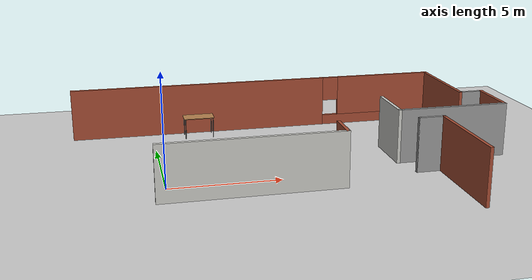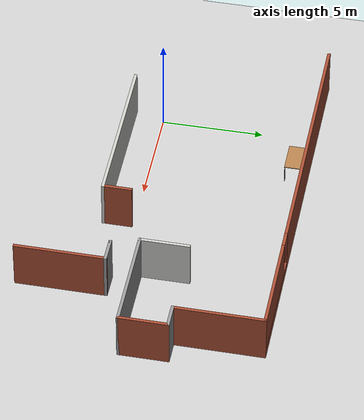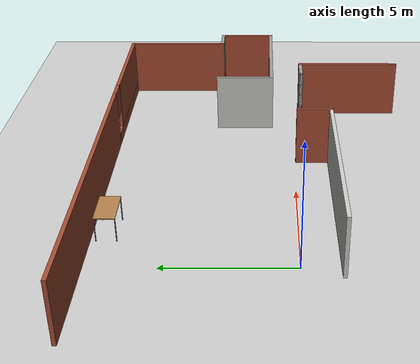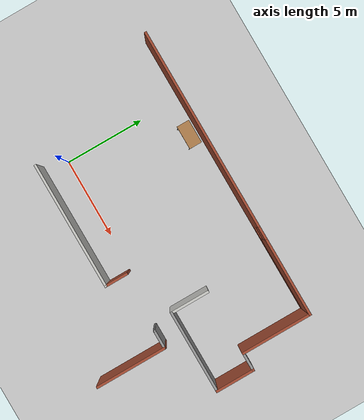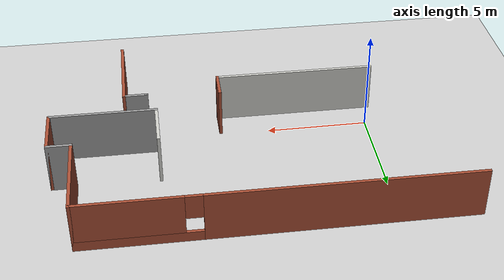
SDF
<sdf version="1.6">
 <world name="default">
  <model name="ground_plane">
   <static>1</static>
   <link name="link">
    <collision name="collision">
     <geometry><plane><normal>0 0 1</normal><size>100 100</size></plane></geometry>
     <surface>
      <contact><collide_bitmask>65535</collide_bitmask></contact>
      <friction><ode><mu>100</mu><mu2>50</mu2></ode></friction>
     </surface>
    </collision>
    <visual name="visual">
     <cast_shadows>0</cast_shadows>
     <geometry><plane><normal>0 0 1</normal><size>100 100</size></plane></geometry>
     <material>
      <script><uri>file://media/materials/scripts/gazebo.material</uri><name>Gazebo/Grey</name></script>
     </material>
    </visual>
   </link>
  </model>
  <model name="table">
   <static>1</static>
   <link name="link">
    <collision name="surface">
     <pose>0 0 1 0 -0 0</pose>
     <geometry><box><size>1.5 0.8 0.03</size></box></geometry>
     <surface><friction><ode><mu>0.6</mu><mu2>0.6</mu2></ode></friction></surface>
    </collision>
    <visual name="visual1">
     <pose>0 0 1 0 -0 0</pose>
     <geometry><box><size>1.5 0.8 0.03</size></box></geometry>
     <material>
      <script><uri>file://media/materials/scripts/gazebo.material</uri><name>Gazebo/Wood</name></script>
     </material>
    </visual>
    <collision name="front_left_leg">
     <pose>0.68 0.38 0.5 0 -0 0</pose>
     <geometry><cylinder><radius>0.02</radius><length>1</length></cylinder></geometry>
    </collision>
    <visual name="front_left_leg">
     <pose>0.68 0.38 0.5 0 -0 0</pose>
     <geometry><cylinder><radius>0.02</radius><length>1</length></cylinder></geometry>
     <material>
      <script><uri>file://media/materials/scripts/gazebo.material</uri><name>Gazebo/Grey</name></script>
     </material>
    </visual>
    <collision name="front_right_leg">
     <pose>0.68 -0.38 0.5 0 -0 0</pose>
     <geometry><cylinder><radius>0.02</radius><length>1</length></cylinder></geometry>
    </collision>
    <visual name="front_right_leg">
     <pose>0.68 -0.38 0.5 0 -0 0</pose>
     <geometry><cylinder><radius>0.02</radius><length>1</length></cylinder></geometry>
     <material>
      <script><uri>file://media/materials/scripts/gazebo.material</uri><name>Gazebo/Grey</name></script>
     </material>
    </visual>
    <collision name="back_right_leg">
     <pose>-0.68 -0.38 0.5 0 -0 0</pose>
     <geometry><cylinder><radius>0.02</radius><length>1</length></cylinder></geometry>
    </collision>
    <visual name="back_right_leg">
     <pose>-0.68 -0.38 0.5 0 -0 0</pose>
     <geometry><cylinder><radius>0.02</radius><length>1</length></cylinder></geometry>
     <material>
      <script><uri>file://media/materials/scripts/gazebo.material</uri><name>Gazebo/Grey</name></script>
     </material>
    </visual>
    <collision name="back_left_leg">
     <pose>-0.68 0.38 0.5 0 -0 0</pose>
     <geometry><cylinder><radius>0.02</radius><length>1</length></cylinder></geometry>
    </collision>
    <visual name="back_left_leg">
     <pose>-0.68 0.38 0.5 0 -0 0</pose>
     <geometry><cylinder><radius>0.02</radius><length>1</length></cylinder></geometry>
     <material>
      <script><uri>file://media/materials/scripts/gazebo.material</uri><name>Gazebo/Grey</name></script>
     </material>
    </visual>
   </link>
   <pose>2.2685 6.9934 0 0 -0 0</pose>
  </model>
  <model name="homeOffice">
   <link name="Wall_20">
    <pose>5.69721 -2.2696 0 0 0 -1.5708</pose>
    <visual name="Wall_20_Visual">
     <pose>0 0 1.25 0 -0 0</pose>
     <geometry><box><size>1.5 0.15 2.5</size></box></geometry>
     <material>
      <script><uri>file://media/materials/scripts/gazebo.material</uri><name>Gazebo/Bricks</name></script>
      <ambient>1 1 1 1</ambient>
      <shader type="pixel"/>
      <diffuse>1 1 1 1</diffuse>
      <specular>0.2 0.2 0.2 1</specular>
      <emissive>0 0 0 1</emissive>
     </material>
     <meta><layer>0</layer></meta>
    </visual>
    <collision name="Wall_20_Collision">
     <pose>0 0 1.25 0 -0 0</pose>
     <geometry><box><size>1.5 0.15 2.5</size></box></geometry>
     <surface>
      <friction>
       <ode><mu>1</mu><mu2>1</mu2><fdir1>0 0 0</fdir1><slip1>0</slip1><slip2>0</slip2></ode>
       <torsional>
        <coefficient>1</coefficient>
        <patch_radius>0</patch_radius>
        <surface_radius>0</surface_radius>
        <use_patch_radius>1</use_patch_radius>
        <ode><slip>0</slip></ode>
       </torsional>
      </friction>
      <bounce><restitution_coefficient>0</restitution_coefficient><threshold>1e+06</threshold></bounce>
      <contact>
       <collide_without_contact>0</collide_without_contact>
       <collide_without_contact_bitmask>1</collide_without_contact_bitmask>
       <collide_bitmask>1</collide_bitmask>
       <ode>
        <soft_cfm>0</soft_cfm>
        <soft_erp>0.2</soft_erp>
        <kp>1e+13</kp>
        <kd>1</kd>
        <max_vel>0.01</max_vel>
        <min_depth>0</min_depth>
       </ode>
       <bullet>
        <split_impulse>1</split_impulse>
        <split_impulse_penetration_threshold>-0.01</split_impulse_penetration_threshold>
        <soft_cfm>0</soft_cfm>
        <soft_erp>0.2</soft_erp>
        <kp>1e+13</kp>
        <kd>1</kd>
       </bullet>
      </contact>
     </surface>
    </collision>
   </link>
   <link name="Wall_21">
    <pose>1.77221 -2.9446 0 0 -0 3.14159</pose>
    <visual name="Wall_21_Visual">
     <pose>0 0 1.25 0 -0 0</pose>
     <geometry><box><size>8 0.15 2.5</size></box></geometry>
     <material>
      <script><uri>file://media/materials/scripts/gazebo.material</uri><name>Gazebo/CeilingTiled</name></script>
      <ambient>0.435294 0.796078 0.67451 1</ambient>
      <shader type="pixel"/>
      <diffuse>1 1 1 1</diffuse>
      <specular>0 0 0 1</specular>
      <emissive>0 0 0 1</emissive>
     </material>
     <meta><layer>0</layer></meta>
    </visual>
    <collision name="Wall_21_Collision">
     <pose>0 0 1.25 0 -0 0</pose>
     <geometry><box><size>8 0.15 2.5</size></box></geometry>
     <surface>
      <friction>
       <ode><mu>1</mu><mu2>1</mu2><fdir1>0 0 0</fdir1><slip1>0</slip1><slip2>0</slip2></ode>
       <torsional>
        <coefficient>1</coefficient>
        <patch_radius>0</patch_radius>
        <surface_radius>0</surface_radius>
        <use_patch_radius>1</use_patch_radius>
        <ode><slip>0</slip></ode>
       </torsional>
      </friction>
      <bounce><restitution_coefficient>0</restitution_coefficient><threshold>1e+06</threshold></bounce>
      <contact>
       <collide_without_contact>0</collide_without_contact>
       <collide_without_contact_bitmask>1</collide_without_contact_bitmask>
       <collide_bitmask>1</collide_bitmask>
       <ode>
        <soft_cfm>0</soft_cfm>
        <soft_erp>0.2</soft_erp>
        <kp>1e+13</kp>
        <kd>1</kd>
        <max_vel>0.01</max_vel>
        <min_depth>0</min_depth>
       </ode>
       <bullet>
        <split_impulse>1</split_impulse>
        <split_impulse_penetration_threshold>-0.01</split_impulse_penetration_threshold>
        <soft_cfm>0</soft_cfm>
        <soft_erp>0.2</soft_erp>
        <kp>1e+13</kp>
        <kd>1</kd>
       </bullet>
      </contact>
     </surface>
    </collision>
   </link>
   <link name="Wall_47">
    <pose>10.3872 -4.0196 0 0 -0 1.5708</pose>
    <visual name="Wall_47_Visual">
     <pose>0 0 1.25 0 -0 0</pose>
     <geometry><box><size>4.5 0.15 2.5</size></box></geometry>
     <material>
      <script><uri>file://media/materials/scripts/gazebo.material</uri><name>Gazebo/Bricks</name></script>
      <ambient>1 1 1 1</ambient>
      <shader type="pixel"/>
      <diffuse>1 1 1 1</diffuse>
      <specular>0.2 0.2 0.2 1</specular>
      <emissive>0 0 0 1</emissive>
     </material>
     <meta><layer>0</layer></meta>
    </visual>
    <collision name="Wall_47_Collision">
     <pose>0 0 1.25 0 -0 0</pose>
     <geometry><box><size>4.5 0.15 2.5</size></box></geometry>
     <surface>
      <friction>
       <ode><mu>1</mu><mu2>1</mu2><fdir1>0 0 0</fdir1><slip1>0</slip1><slip2>0</slip2></ode>
       <torsional>
        <coefficient>1</coefficient>
        <patch_radius>0</patch_radius>
        <surface_radius>0</surface_radius>
        <use_patch_radius>1</use_patch_radius>
        <ode><slip>0</slip></ode>
       </torsional>
      </friction>
      <bounce><restitution_coefficient>0</restitution_coefficient><threshold>1e+06</threshold></bounce>
      <contact>
       <collide_without_contact>0</collide_without_contact>
       <collide_without_contact_bitmask>1</collide_without_contact_bitmask>
       <collide_bitmask>1</collide_bitmask>
       <ode>
        <soft_cfm>0</soft_cfm>
        <soft_erp>0.2</soft_erp>
        <kp>1e+13</kp>
        <kd>1</kd>
        <max_vel>0.01</max_vel>
        <min_depth>0</min_depth>
       </ode>
       <bullet>
        <split_impulse>1</split_impulse>
        <split_impulse_penetration_threshold>-0.01</split_impulse_penetration_threshold>
        <soft_cfm>0</soft_cfm>
        <soft_erp>0.2</soft_erp>
        <kp>1e+13</kp>
        <kd>1</kd>
       </bullet>
      </contact>
     </surface>
    </collision>
   </link>
   <link name="Wall_48">
    <pose>9.83721 -1.8446 0 0 -0 3.14159</pose>
    <visual name="Wall_48_Visual">
     <pose>0 0 1.25 0 -0 0</pose>
     <geometry><box><size>1.25 0.15 2.5</size></box></geometry>
     <material>
      <script><uri>file://media/materials/scripts/gazebo.material</uri><name>Gazebo/Grey</name></script>
      <ambient>1 1 1 1</ambient>
      <shader type="pixel"/>
      <diffuse>0.7 0.7 0.7 1</diffuse>
      <specular>0.01 0.01 0.01 1</specular>
      <emissive>0 0 0 1</emissive>
     </material>
     <meta><layer>0</layer></meta>
    </visual>
    <collision name="Wall_48_Collision">
     <pose>0 0 1.25 0 -0 0</pose>
     <geometry><box><size>1.25 0.15 2.5</size></box></geometry>
     <surface>
      <friction>
       <ode><mu>1</mu><mu2>1</mu2><fdir1>0 0 0</fdir1><slip1>0</slip1><slip2>0</slip2></ode>
       <torsional>
        <coefficient>1</coefficient>
        <patch_radius>0</patch_radius>
        <surface_radius>0</surface_radius>
        <use_patch_radius>1</use_patch_radius>
        <ode><slip>0</slip></ode>
       </torsional>
      </friction>
      <bounce><restitution_coefficient>0</restitution_coefficient><threshold>1e+06</threshold></bounce>
      <contact>
       <collide_without_contact>0</collide_without_contact>
       <collide_without_contact_bitmask>1</collide_without_contact_bitmask>
       <collide_bitmask>1</collide_bitmask>
       <ode>
        <soft_cfm>0</soft_cfm>
        <soft_erp>0.2</soft_erp>
        <kp>1e+13</kp>
        <kd>1</kd>
        <max_vel>0.01</max_vel>
        <min_depth>0</min_depth>
       </ode>
       <bullet>
        <split_impulse>1</split_impulse>
        <split_impulse_penetration_threshold>-0.01</split_impulse_penetration_threshold>
        <soft_cfm>0</soft_cfm>
        <soft_erp>0.2</soft_erp>
        <kp>1e+13</kp>
        <kd>1</kd>
       </bullet>
      </contact>
     </surface>
    </collision>
   </link>
   <link name="Wall_49">
    <pose>9.28721 -1.8446 0 0 -0 0</pose>
    <visual name="Wall_49_Visual">
     <pose>0 0 1.25 0 -0 0</pose>
     <geometry><box><size>0.15 0.15 2.5</size></box></geometry>
     <material>
      <script><uri>file://media/materials/scripts/gazebo.material</uri><name>Gazebo/Grey</name></script>
      <ambient>1 1 1 1</ambient>
      <shader type="pixel"/>
      <diffuse>0.7 0.7 0.7 1</diffuse>
      <specular>0.01 0.01 0.01 1</specular>
      <emissive>0 0 0 1</emissive>
     </material>
     <meta><layer>0</layer></meta>
    </visual>
    <collision name="Wall_49_Collision">
     <pose>0 0 1.25 0 -0 0</pose>
     <geometry><box><size>0.15 0.15 2.5</size></box></geometry>
     <surface>
      <friction>
       <ode><mu>1</mu><mu2>1</mu2><fdir1>0 0 0</fdir1><slip1>0</slip1><slip2>0</slip2></ode>
       <torsional>
        <coefficient>1</coefficient>
        <patch_radius>0</patch_radius>
        <surface_radius>0</surface_radius>
        <use_patch_radius>1</use_patch_radius>
        <ode><slip>0</slip></ode>
       </torsional>
      </friction>
      <bounce><restitution_coefficient>0</restitution_coefficient><threshold>1e+06</threshold></bounce>
      <contact>
       <collide_without_contact>0</collide_without_contact>
       <collide_without_contact_bitmask>1</collide_without_contact_bitmask>
       <collide_bitmask>1</collide_bitmask>
       <ode>
        <soft_cfm>0</soft_cfm>
        <soft_erp>0.2</soft_erp>
        <kp>1e+13</kp>
        <kd>1</kd>
        <max_vel>0.01</max_vel>
        <min_depth>0</min_depth>
       </ode>
       <bullet>
        <split_impulse>1</split_impulse>
        <split_impulse_penetration_threshold>-0.01</split_impulse_penetration_threshold>
        <soft_cfm>0</soft_cfm>
        <soft_erp>0.2</soft_erp>
        <kp>1e+13</kp>
        <kd>1</kd>
       </bullet>
      </contact>
     </surface>
    </collision>
   </link>
   <link name="Wall_65">
    <pose>3.69779 6.1946 0 0 -0 0</pose>
    <visual name="Wall_65_Visual_2">
     <pose>6.76475 0 1.5 0 -0 0</pose>
     <geometry><box><size>4.97051 0.15 2</size></box></geometry>
     <material>
      <script><uri>file://media/materials/scripts/gazebo.material</uri><name>Gazebo/Bricks</name></script>
      <ambient>1 1 1 1</ambient>
      <shader type="pixel"/>
      <diffuse>1 1 1 1</diffuse>
      <specular>0.2 0.2 0.2 1</specular>
      <emissive>0 0 0 1</emissive>
     </material>
     <meta><layer>0</layer></meta>
    </visual>
    <visual name="Wall_65_Visual_0">
     <pose>-2.88525 0 1.25 0 -0 0</pose>
     <geometry><box><size>12.7295 0.15 2.5</size></box></geometry>
     <material>
      <script><uri>file://media/materials/scripts/gazebo.material</uri><name>Gazebo/Bricks</name></script>
      <ambient>1 1 1 1</ambient>
      <shader type="pixel"/>
      <diffuse>1 1 1 1</diffuse>
      <specular>0.2 0.2 0.2 1</specular>
      <emissive>0 0 0 1</emissive>
     </material>
     <meta><layer>0</layer></meta>
    </visual>
    <visual name="Wall_65_Visual_1">
     <pose>6.36475 0 0.25 0 -0 0</pose>
     <geometry><box><size>5.77051 0.15 0.5</size></box></geometry>
     <material>
      <script><uri>file://media/materials/scripts/gazebo.material</uri><name>Gazebo/Bricks</name></script>
      <ambient>1 1 1 1</ambient>
      <shader type="pixel"/>
      <diffuse>1 1 1 1</diffuse>
      <specular>0.2 0.2 0.2 1</specular>
      <emissive>0 0 0 1</emissive>
     </material>
     <meta><layer>0</layer></meta>
    </visual>
    <visual name="Wall_65_Visual_3">
     <pose>3.87949 0 1.9 0 -0 0</pose>
     <geometry><box><size>0.8 0.15 1.2</size></box></geometry>
     <material>
      <script><uri>file://media/materials/scripts/gazebo.material</uri><name>Gazebo/Bricks</name></script>
      <ambient>1 1 1 1</ambient>
      <shader type="pixel"/>
      <diffuse>1 1 1 1</diffuse>
      <specular>0.2 0.2 0.2 1</specular>
      <emissive>0 0 0 1</emissive>
     </material>
     <meta><layer>0</layer></meta>
    </visual>
    <collision name="Wall_65_Collision_0">
     <pose>-2.88525 0 1.25 0 -0 0</pose>
     <geometry><box><size>12.7295 0.15 2.5</size></box></geometry>
     <surface>
      <friction>
       <ode><mu>1</mu><mu2>1</mu2><fdir1>0 0 0</fdir1><slip1>0</slip1><slip2>0</slip2></ode>
       <torsional>
        <coefficient>1</coefficient>
        <patch_radius>0</patch_radius>
        <surface_radius>0</surface_radius>
        <use_patch_radius>1</use_patch_radius>
        <ode><slip>0</slip></ode>
       </torsional>
      </friction>
      <bounce><restitution_coefficient>0</restitution_coefficient><threshold>1e+06</threshold></bounce>
      <contact>
       <collide_without_contact>0</collide_without_contact>
       <collide_without_contact_bitmask>1</collide_without_contact_bitmask>
       <collide_bitmask>1</collide_bitmask>
       <ode>
        <soft_cfm>0</soft_cfm>
        <soft_erp>0.2</soft_erp>
        <kp>1e+13</kp>
        <kd>1</kd>
        <max_vel>0.01</max_vel>
        <min_depth>0</min_depth>
       </ode>
       <bullet>
        <split_impulse>1</split_impulse>
        <split_impulse_penetration_threshold>-0.01</split_impulse_penetration_threshold>
        <soft_cfm>0</soft_cfm>
        <soft_erp>0.2</soft_erp>
        <kp>1e+13</kp>
        <kd>1</kd>
       </bullet>
      </contact>
     </surface>
    </collision>
    <collision name="Wall_65_Collision_1">
     <pose>6.36475 0 0.25 0 -0 0</pose>
     <geometry><box><size>5.77051 0.15 0.5</size></box></geometry>
     <surface>
      <friction>
       <ode><mu>1</mu><mu2>1</mu2><fdir1>0 0 0</fdir1><slip1>0</slip1><slip2>0</slip2></ode>
       <torsional>
        <coefficient>1</coefficient>
        <patch_radius>0</patch_radius>
        <surface_radius>0</surface_radius>
        <use_patch_radius>1</use_patch_radius>
        <ode><slip>0</slip></ode>
       </torsional>
      </friction>
      <bounce><restitution_coefficient>0</restitution_coefficient><threshold>1e+06</threshold></bounce>
      <contact>
       <collide_without_contact>0</collide_without_contact>
       <collide_without_contact_bitmask>1</collide_without_contact_bitmask>
       <collide_bitmask>1</collide_bitmask>
       <ode>
        <soft_cfm>0</soft_cfm>
        <soft_erp>0.2</soft_erp>
        <kp>1e+13</kp>
        <kd>1</kd>
        <max_vel>0.01</max_vel>
        <min_depth>0</min_depth>
       </ode>
       <bullet>
        <split_impulse>1</split_impulse>
        <split_impulse_penetration_threshold>-0.01</split_impulse_penetration_threshold>
        <soft_cfm>0</soft_cfm>
        <soft_erp>0.2</soft_erp>
        <kp>1e+13</kp>
        <kd>1</kd>
       </bullet>
      </contact>
     </surface>
    </collision>
    <collision name="Wall_65_Collision_2">
     <pose>6.76475 0 1.5 0 -0 0</pose>
     <geometry><box><size>4.97051 0.15 2</size></box></geometry>
     <surface>
      <friction>
       <ode><mu>1</mu><mu2>1</mu2><fdir1>0 0 0</fdir1><slip1>0</slip1><slip2>0</slip2></ode>
       <torsional>
        <coefficient>1</coefficient>
        <patch_radius>0</patch_radius>
        <surface_radius>0</surface_radius>
        <use_patch_radius>1</use_patch_radius>
        <ode><slip>0</slip></ode>
       </torsional>
      </friction>
      <bounce><restitution_coefficient>0</restitution_coefficient><threshold>1e+06</threshold></bounce>
      <contact>
       <collide_without_contact>0</collide_without_contact>
       <collide_without_contact_bitmask>1</collide_without_contact_bitmask>
       <collide_bitmask>1</collide_bitmask>
       <ode>
        <soft_cfm>0</soft_cfm>
        <soft_erp>0.2</soft_erp>
        <kp>1e+13</kp>
        <kd>1</kd>
        <max_vel>0.01</max_vel>
        <min_depth>0</min_depth>
       </ode>
       <bullet>
        <split_impulse>1</split_impulse>
        <split_impulse_penetration_threshold>-0.01</split_impulse_penetration_threshold>
        <soft_cfm>0</soft_cfm>
        <soft_erp>0.2</soft_erp>
        <kp>1e+13</kp>
        <kd>1</kd>
       </bullet>
      </contact>
     </surface>
    </collision>
    <collision name="Wall_65_Collision_3">
     <pose>3.87949 0 1.9 0 -0 0</pose>
     <geometry><box><size>0.8 0.15 1.2</size></box></geometry>
     <surface>
      <friction>
       <ode><mu>1</mu><mu2>1</mu2><fdir1>0 0 0</fdir1><slip1>0</slip1><slip2>0</slip2></ode>
       <torsional>
        <coefficient>1</coefficient>
        <patch_radius>0</patch_radius>
        <surface_radius>0</surface_radius>
        <use_patch_radius>1</use_patch_radius>
        <ode><slip>0</slip></ode>
       </torsional>
      </friction>
      <bounce><restitution_coefficient>0</restitution_coefficient><threshold>1e+06</threshold></bounce>
      <contact>
       <collide_without_contact>0</collide_without_contact>
       <collide_without_contact_bitmask>1</collide_without_contact_bitmask>
       <collide_bitmask>1</collide_bitmask>
       <ode>
        <soft_cfm>0</soft_cfm>
        <soft_erp>0.2</soft_erp>
        <kp>1e+13</kp>
        <kd>1</kd>
        <max_vel>0.01</max_vel>
        <min_depth>0</min_depth>
       </ode>
       <bullet>
        <split_impulse>1</split_impulse>
        <split_impulse_penetration_threshold>-0.01</split_impulse_penetration_threshold>
        <soft_cfm>0</soft_cfm>
        <soft_erp>0.2</soft_erp>
        <kp>1e+13</kp>
        <kd>1</kd>
       </bullet>
      </contact>
     </surface>
    </collision>
   </link>
   <link name="Wall_66">
    <pose>12.8728 4.0196 0 0 0 -1.5708</pose>
    <visual name="Wall_66_Visual">
     <pose>0 0 1.25 0 -0 0</pose>
     <geometry><box><size>4.5 0.15 2.5</size></box></geometry>
     <material>
      <script><uri>file://media/materials/scripts/gazebo.material</uri><name>Gazebo/Bricks</name></script>
      <ambient>1 1 1 1</ambient>
      <shader type="pixel"/>
      <diffuse>1 1 1 1</diffuse>
      <specular>0.2 0.2 0.2 1</specular>
      <emissive>0 0 0 1</emissive>
     </material>
     <meta><layer>0</layer></meta>
    </visual>
    <collision name="Wall_66_Collision">
     <pose>0 0 1.25 0 -0 0</pose>
     <geometry><box><size>4.5 0.15 2.5</size></box></geometry>
     <surface>
      <friction>
       <ode><mu>1</mu><mu2>1</mu2><fdir1>0 0 0</fdir1><slip1>0</slip1><slip2>0</slip2></ode>
       <torsional>
        <coefficient>1</coefficient>
        <patch_radius>0</patch_radius>
        <surface_radius>0</surface_radius>
        <use_patch_radius>1</use_patch_radius>
        <ode><slip>0</slip></ode>
       </torsional>
      </friction>
      <bounce><restitution_coefficient>0</restitution_coefficient><threshold>1e+06</threshold></bounce>
      <contact>
       <collide_without_contact>0</collide_without_contact>
       <collide_without_contact_bitmask>1</collide_without_contact_bitmask>
       <collide_bitmask>1</collide_bitmask>
       <ode>
        <soft_cfm>0</soft_cfm>
        <soft_erp>0.2</soft_erp>
        <kp>1e+13</kp>
        <kd>1</kd>
        <max_vel>0.01</max_vel>
        <min_depth>0</min_depth>
       </ode>
       <bullet>
        <split_impulse>1</split_impulse>
        <split_impulse_penetration_threshold>-0.01</split_impulse_penetration_threshold>
        <soft_cfm>0</soft_cfm>
        <soft_erp>0.2</soft_erp>
        <kp>1e+13</kp>
        <kd>1</kd>
       </bullet>
      </contact>
     </surface>
    </collision>
   </link>
   <link name="Wall_67">
    <pose>13.4228 1.8446 0 0 -0 0</pose>
    <visual name="Wall_67_Visual">
     <pose>0 0 1.25 0 -0 0</pose>
     <geometry><box><size>1.25 0.15 2.5</size></box></geometry>
     <material>
      <script><uri>file://media/materials/scripts/gazebo.material</uri><name>Gazebo/Grey</name></script>
      <ambient>1 1 1 1</ambient>
      <shader type="pixel"/>
      <diffuse>0.7 0.7 0.7 1</diffuse>
      <specular>0.01 0.01 0.01 1</specular>
      <emissive>0 0 0 1</emissive>
     </material>
     <meta><layer>0</layer></meta>
    </visual>
    <collision name="Wall_67_Collision">
     <pose>0 0 1.25 0 -0 0</pose>
     <geometry><box><size>1.25 0.15 2.5</size></box></geometry>
     <surface>
      <friction>
       <ode><mu>1</mu><mu2>1</mu2><fdir1>0 0 0</fdir1><slip1>0</slip1><slip2>0</slip2></ode>
       <torsional>
        <coefficient>1</coefficient>
        <patch_radius>0</patch_radius>
        <surface_radius>0</surface_radius>
        <use_patch_radius>1</use_patch_radius>
        <ode><slip>0</slip></ode>
       </torsional>
      </friction>
      <bounce><restitution_coefficient>0</restitution_coefficient><threshold>1e+06</threshold></bounce>
      <contact>
       <collide_without_contact>0</collide_without_contact>
       <collide_without_contact_bitmask>1</collide_without_contact_bitmask>
       <collide_bitmask>1</collide_bitmask>
       <ode>
        <soft_cfm>0</soft_cfm>
        <soft_erp>0.2</soft_erp>
        <kp>1e+13</kp>
        <kd>1</kd>
        <max_vel>0.01</max_vel>
        <min_depth>0</min_depth>
       </ode>
       <bullet>
        <split_impulse>1</split_impulse>
        <split_impulse_penetration_threshold>-0.01</split_impulse_penetration_threshold>
        <soft_cfm>0</soft_cfm>
        <soft_erp>0.2</soft_erp>
        <kp>1e+13</kp>
        <kd>1</kd>
       </bullet>
      </contact>
     </surface>
    </collision>
   </link>
   <link name="Wall_68">
    <pose>13.9728 0.6696 0 0 0 -1.5708</pose>
    <visual name="Wall_68_Visual">
     <pose>0 0 1.25 0 -0 0</pose>
     <geometry><box><size>2.5 0.15 2.5</size></box></geometry>
     <material>
      <script><uri>file://media/materials/scripts/gazebo.material</uri><name>Gazebo/Bricks</name></script>
      <ambient>1 1 1 1</ambient>
      <shader type="pixel"/>
      <diffuse>1 1 1 1</diffuse>
      <specular>0.2 0.2 0.2 1</specular>
      <emissive>0 0 0 1</emissive>
     </material>
     <meta><layer>0</layer></meta>
    </visual>
    <collision name="Wall_68_Collision">
     <pose>0 0 1.25 0 -0 0</pose>
     <geometry><box><size>2.5 0.15 2.5</size></box></geometry>
     <surface>
      <friction>
       <ode><mu>1</mu><mu2>1</mu2><fdir1>0 0 0</fdir1><slip1>0</slip1><slip2>0</slip2></ode>
       <torsional>
        <coefficient>1</coefficient>
        <patch_radius>0</patch_radius>
        <surface_radius>0</surface_radius>
        <use_patch_radius>1</use_patch_radius>
        <ode><slip>0</slip></ode>
       </torsional>
      </friction>
      <bounce><restitution_coefficient>0</restitution_coefficient><threshold>1e+06</threshold></bounce>
      <contact>
       <collide_without_contact>0</collide_without_contact>
       <collide_without_contact_bitmask>1</collide_without_contact_bitmask>
       <collide_bitmask>1</collide_bitmask>
       <ode>
        <soft_cfm>0</soft_cfm>
        <soft_erp>0.2</soft_erp>
        <kp>1e+13</kp>
        <kd>1</kd>
        <max_vel>0.01</max_vel>
        <min_depth>0</min_depth>
       </ode>
       <bullet>
        <split_impulse>1</split_impulse>
        <split_impulse_penetration_threshold>-0.01</split_impulse_penetration_threshold>
        <soft_cfm>0</soft_cfm>
        <soft_erp>0.2</soft_erp>
        <kp>1e+13</kp>
        <kd>1</kd>
       </bullet>
      </contact>
     </surface>
    </collision>
   </link>
   <link name="Wall_69">
    <pose>11.4228 -0.5054 0 0 -0 3.14159</pose>
    <visual name="Wall_69_Visual">
     <pose>0 0 1.25 0 -0 0</pose>
     <geometry><box><size>5.25 0.15 2.5</size></box></geometry>
     <material>
      <script><uri>file://media/materials/scripts/gazebo.material</uri><name>Gazebo/Grey</name></script>
      <ambient>1 1 1 1</ambient>
      <shader type="pixel"/>
      <diffuse>0.7 0.7 0.7 1</diffuse>
      <specular>0.01 0.01 0.01 1</specular>
      <emissive>0 0 0 1</emissive>
     </material>
     <meta><layer>0</layer></meta>
    </visual>
    <collision name="Wall_69_Collision">
     <pose>0 0 1.25 0 -0 0</pose>
     <geometry><box><size>5.25 0.15 2.5</size></box></geometry>
     <surface>
      <friction>
       <ode><mu>1</mu><mu2>1</mu2><fdir1>0 0 0</fdir1><slip1>0</slip1><slip2>0</slip2></ode>
       <torsional>
        <coefficient>1</coefficient>
        <patch_radius>0</patch_radius>
        <surface_radius>0</surface_radius>
        <use_patch_radius>1</use_patch_radius>
        <ode><slip>0</slip></ode>
       </torsional>
      </friction>
      <bounce><restitution_coefficient>0</restitution_coefficient><threshold>1e+06</threshold></bounce>
      <contact>
       <collide_without_contact>0</collide_without_contact>
       <collide_without_contact_bitmask>1</collide_without_contact_bitmask>
       <collide_bitmask>1</collide_bitmask>
       <ode>
        <soft_cfm>0</soft_cfm>
        <soft_erp>0.2</soft_erp>
        <kp>1e+13</kp>
        <kd>1</kd>
        <max_vel>0.01</max_vel>
        <min_depth>0</min_depth>
       </ode>
       <bullet>
        <split_impulse>1</split_impulse>
        <split_impulse_penetration_threshold>-0.01</split_impulse_penetration_threshold>
        <soft_cfm>0</soft_cfm>
        <soft_erp>0.2</soft_erp>
        <kp>1e+13</kp>
        <kd>1</kd>
       </bullet>
      </contact>
     </surface>
    </collision>
   </link>
   <link name="Wall_70">
    <pose>8.87279 0.6696 0 0 -0 1.5708</pose>
    <visual name="Wall_70_Visual">
     <pose>0 0 1.25 0 -0 0</pose>
     <geometry><box><size>2.5 0.15 2.5</size></box></geometry>
     <material>
      <script><uri>file://media/materials/scripts/gazebo.material</uri><name>Gazebo/CeilingTiled</name></script>
      <ambient>1 1 1 1</ambient>
      <shader type="pixel"/>
      <diffuse>1 1 1 1</diffuse>
      <specular>0 0 0 1</specular>
      <emissive>0 0 0 1</emissive>
     </material>
     <meta><layer>0</layer></meta>
    </visual>
    <collision name="Wall_70_Collision">
     <pose>0 0 1.25 0 -0 0</pose>
     <geometry><box><size>2.5 0.15 2.5</size></box></geometry>
     <surface>
      <friction>
       <ode><mu>1</mu><mu2>1</mu2><fdir1>0 0 0</fdir1><slip1>0</slip1><slip2>0</slip2></ode>
       <torsional>
        <coefficient>1</coefficient>
        <patch_radius>0</patch_radius>
        <surface_radius>0</surface_radius>
        <use_patch_radius>1</use_patch_radius>
        <ode><slip>0</slip></ode>
       </torsional>
      </friction>
      <bounce><restitution_coefficient>0</restitution_coefficient><threshold>1e+06</threshold></bounce>
      <contact>
       <collide_without_contact>0</collide_without_contact>
       <collide_without_contact_bitmask>1</collide_without_contact_bitmask>
       <collide_bitmask>1</collide_bitmask>
       <ode>
        <soft_cfm>0</soft_cfm>
        <soft_erp>0.2</soft_erp>
        <kp>1e+13</kp>
        <kd>1</kd>
        <max_vel>0.01</max_vel>
        <min_depth>0</min_depth>
       </ode>
       <bullet>
        <split_impulse>1</split_impulse>
        <split_impulse_penetration_threshold>-0.01</split_impulse_penetration_threshold>
        <soft_cfm>0</soft_cfm>
        <soft_erp>0.2</soft_erp>
        <kp>1e+13</kp>
        <kd>1</kd>
       </bullet>
      </contact>
     </surface>
    </collision>
   </link>
   <static>1</static>
   <pose>1.7028 1.4546 0 0 -0 0</pose>
  </model>
 </world>
</sdf>
